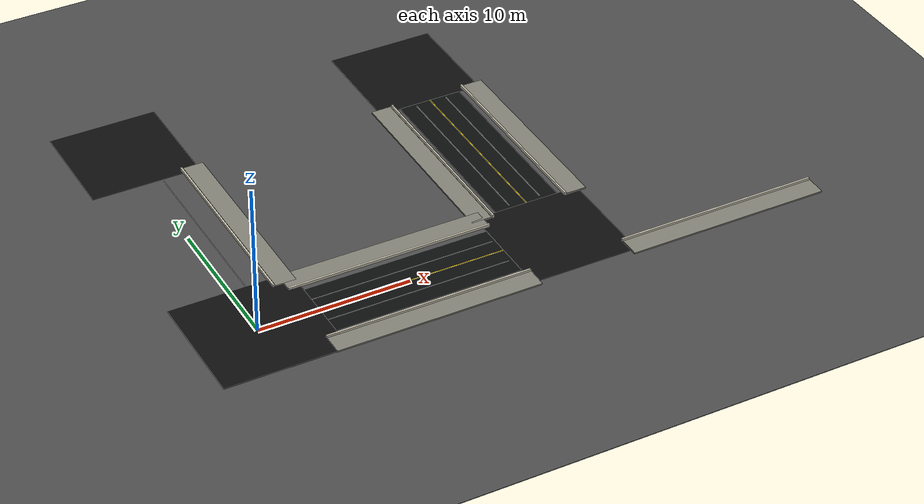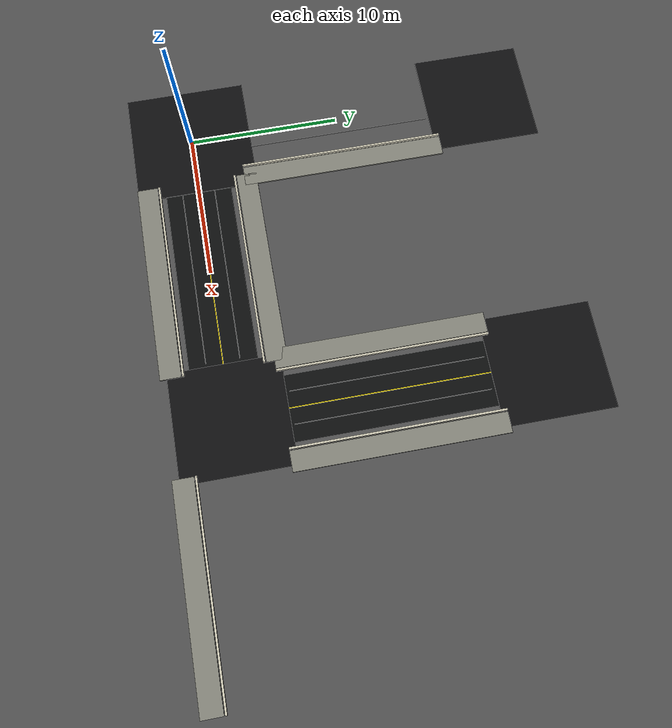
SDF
<sdf version="1.9">
 <world name="smart_city_world">
  <model name="ground">
   <static>true</static>
   <link name="link">
    <collision name="collision"><geometry><box><size>145 145 0.05</size></box></geometry></collision>
    <visual name="visual">
     <geometry><box><size>145 145 0.05</size></box></geometry>
     <material><ambient>0.30 0.30 0.30 1</ambient><diffuse>0.30 0.30 0.30 1</diffuse></material>
    </visual>
   </link>
  </model>
  <model name="road_e11">
   <static>true</static>
   <pose>10.000 0.000 0.018 0 0 0.000000</pose>
   <link name="link">
    <collision name="collision"><geometry><box><size>13.600 4.350 0.030</size></box></geometry></collision>
    <visual name="visual">
     <geometry><box><size>13.600 4.350 0.030</size></box></geometry>
     <material><ambient>0.045 0.047 0.05 1</ambient><diffuse>0.045 0.047 0.05 1</diffuse></material>
    </visual>
   </link>
  </model>
  <model name="center_line_e11">
   <static>true</static>
   <pose>10.000 0.000 0.052 0 0 0.000000</pose>
   <link name="link">
    <visual name="visual">
     <geometry><box><size>12.800 0.070 0.010</size></box></geometry>
     <material><ambient>1 0.86 0.05 1</ambient><diffuse>1 0.86 0.05 1</diffuse></material>
    </visual>
   </link>
  </model>
  <model name="sidewalk_e11_L">
   <static>true</static>
   <pose>10.000 3.350 0.075 0 0 0.000000</pose>
   <link name="link">
    <visual name="visual">
     <geometry><box><size>13.600 1.350 0.100</size></box></geometry>
     <material><ambient>0.5 0.5 0.46 1</ambient><diffuse>0.5 0.5 0.46 1</diffuse></material>
    </visual>
   </link>
  </model>
  <model name="curb_e11_L">
   <static>true</static>
   <pose>10.000 2.550 0.130 0 0 0.000000</pose>
   <link name="link">
    <visual name="visual">
     <geometry><box><size>13.600 0.120 0.180</size></box></geometry>
     <material><ambient>0.8 0.78 0.7 1</ambient><diffuse>0.8 0.78 0.7 1</diffuse></material>
    </visual>
   </link>
  </model>
  <model name="edge_line_e11_L">
   <static>true</static>
   <pose>10.000 1.080 0.054 0 0 0.000000</pose>
   <link name="link">
    <visual name="visual">
     <geometry><box><size>12.400 0.035 0.010</size></box></geometry>
     <material><ambient>0.85 0.85 0.85 1</ambient><diffuse>0.85 0.85 0.85 1</diffuse></material>
    </visual>
   </link>
  </model>
  <model name="sidewalk_e11_R">
   <static>true</static>
   <pose>10.000 -3.350 0.075 0 0 0.000000</pose>
   <link name="link">
    <visual name="visual">
     <geometry><box><size>13.600 1.350 0.100</size></box></geometry>
     <material><ambient>0.5 0.5 0.46 1</ambient><diffuse>0.5 0.5 0.46 1</diffuse></material>
    </visual>
   </link>
  </model>
  <model name="curb_e11_R">
   <static>true</static>
   <pose>10.000 -2.550 0.130 0 0 0.000000</pose>
   <link name="link">
    <visual name="visual">
     <geometry><box><size>13.600 0.120 0.180</size></box></geometry>
     <material><ambient>0.8 0.78 0.7 1</ambient><diffuse>0.8 0.78 0.7 1</diffuse></material>
    </visual>
   </link>
  </model>
  <model name="edge_line_e11_R">
   <static>true</static>
   <pose>10.000 -1.080 0.054 0 0 0.000000</pose>
   <link name="link">
    <visual name="visual">
     <geometry><box><size>12.400 0.035 0.010</size></box></geometry>
     <material><ambient>0.85 0.85 0.85 1</ambient><diffuse>0.85 0.85 0.85 1</diffuse></material>
    </visual>
   </link>
  </model>
  <model name="sidewalk_e12_R">
   <static>true</static>
   <pose>30.000 -3.350 0.075 0 0 0.000000</pose>
   <link name="link">
    <visual name="visual">
     <geometry><box><size>13.600 1.350 0.100</size></box></geometry>
     <material><ambient>0.5 0.5 0.46 1</ambient><diffuse>0.5 0.5 0.46 1</diffuse></material>
    </visual>
   </link>
  </model>
  <model name="curb_e12_R">
   <static>true</static>
   <pose>30.000 -2.550 0.130 0 0 0.000000</pose>
   <link name="link">
    <visual name="visual">
     <geometry><box><size>13.600 0.120 0.180</size></box></geometry>
     <material><ambient>0.8 0.78 0.7 1</ambient><diffuse>0.8 0.78 0.7 1</diffuse></material>
    </visual>
   </link>
  </model>
  <model name="sidewalk_e30_L">
   <static>true</static>
   <pose>3.350 10.000 0.075 0 0 -1.570796</pose>
   <link name="link">
    <visual name="visual">
     <geometry><box><size>13.600 1.350 0.100</size></box></geometry>
     <material><ambient>0.5 0.5 0.46 1</ambient><diffuse>0.5 0.5 0.46 1</diffuse></material>
    </visual>
   </link>
  </model>
  <model name="curb_e30_L">
   <static>true</static>
   <pose>2.550 10.000 0.130 0 0 -1.570796</pose>
   <link name="link">
    <visual name="visual">
     <geometry><box><size>13.600 0.120 0.180</size></box></geometry>
     <material><ambient>0.8 0.78 0.7 1</ambient><diffuse>0.8 0.78 0.7 1</diffuse></material>
    </visual>
   </link>
  </model>
  <model name="edge_line_e30_L">
   <static>true</static>
   <pose>1.080 10.000 0.054 0 0 -1.570796</pose>
   <link name="link">
    <visual name="visual">
     <geometry><box><size>12.400 0.035 0.010</size></box></geometry>
     <material><ambient>0.85 0.85 0.85 1</ambient><diffuse>0.85 0.85 0.85 1</diffuse></material>
    </visual>
   </link>
  </model>
  <model name="road_e34">
   <static>true</static>
   <pose>20.000 10.000 0.018 0 0 -1.570796</pose>
   <link name="link">
    <collision name="collision"><geometry><box><size>13.600 4.350 0.030</size></box></geometry></collision>
    <visual name="visual">
     <geometry><box><size>13.600 4.350 0.030</size></box></geometry>
     <material><ambient>0.045 0.047 0.05 1</ambient><diffuse>0.045 0.047 0.05 1</diffuse></material>
    </visual>
   </link>
  </model>
  <model name="center_line_e34">
   <static>true</static>
   <pose>20.000 10.000 0.052 0 0 -1.570796</pose>
   <link name="link">
    <visual name="visual">
     <geometry><box><size>12.800 0.070 0.010</size></box></geometry>
     <material><ambient>1 0.86 0.05 1</ambient><diffuse>1 0.86 0.05 1</diffuse></material>
    </visual>
   </link>
  </model>
  <model name="sidewalk_e34_L">
   <static>true</static>
   <pose>23.350 10.000 0.075 0 0 -1.570796</pose>
   <link name="link">
    <visual name="visual">
     <geometry><box><size>13.600 1.350 0.100</size></box></geometry>
     <material><ambient>0.5 0.5 0.46 1</ambient><diffuse>0.5 0.5 0.46 1</diffuse></material>
    </visual>
   </link>
  </model>
  <model name="curb_e34_L">
   <static>true</static>
   <pose>22.550 10.000 0.130 0 0 -1.570796</pose>
   <link name="link">
    <visual name="visual">
     <geometry><box><size>13.600 0.120 0.180</size></box></geometry>
     <material><ambient>0.8 0.78 0.7 1</ambient><diffuse>0.8 0.78 0.7 1</diffuse></material>
    </visual>
   </link>
  </model>
  <model name="edge_line_e34_L">
   <static>true</static>
   <pose>21.080 10.000 0.054 0 0 -1.570796</pose>
   <link name="link">
    <visual name="visual">
     <geometry><box><size>12.400 0.035 0.010</size></box></geometry>
     <material><ambient>0.85 0.85 0.85 1</ambient><diffuse>0.85 0.85 0.85 1</diffuse></material>
    </visual>
   </link>
  </model>
  <model name="sidewalk_e34_R">
   <static>true</static>
   <pose>16.650 10.000 0.075 0 0 -1.570796</pose>
   <link name="link">
    <visual name="visual">
     <geometry><box><size>13.600 1.350 0.100</size></box></geometry>
     <material><ambient>0.5 0.5 0.46 1</ambient><diffuse>0.5 0.5 0.46 1</diffuse></material>
    </visual>
   </link>
  </model>
  <model name="curb_e34_R">
   <static>true</static>
   <pose>17.450 10.000 0.130 0 0 -1.570796</pose>
   <link name="link">
    <visual name="visual">
     <geometry><box><size>13.600 0.120 0.180</size></box></geometry>
     <material><ambient>0.8 0.78 0.7 1</ambient><diffuse>0.8 0.78 0.7 1</diffuse></material>
    </visual>
   </link>
  </model>
  <model name="edge_line_e34_R">
   <static>true</static>
   <pose>18.920 10.000 0.054 0 0 -1.570796</pose>
   <link name="link">
    <visual name="visual">
     <geometry><box><size>12.400 0.035 0.010</size></box></geometry>
     <material><ambient>0.85 0.85 0.85 1</ambient><diffuse>0.85 0.85 0.85 1</diffuse></material>
    </visual>
   </link>
  </model>
  <model name="intersection_plate_n9">
   <static>true</static>
   <pose>20.000 20.000 0.025 0 0 0.000000</pose>
   <link name="link">
    <collision name="collision"><geometry><box><size>7.200 7.200 0.035</size></box></geometry></collision>
    <visual name="visual">
     <geometry><box><size>7.200 7.200 0.035</size></box></geometry>
     <material><ambient>0.055 0.055 0.058 1</ambient><diffuse>0.055 0.055 0.058 1</diffuse></material>
    </visual>
   </link>
  </model>
  <model name="intersection_plate_n13">
   <static>true</static>
   <pose>0.000 0.000 0.025 0 0 0.000000</pose>
   <link name="link">
    <collision name="collision"><geometry><box><size>7.200 7.200 0.035</size></box></geometry></collision>
    <visual name="visual">
     <geometry><box><size>7.200 7.200 0.035</size></box></geometry>
     <material><ambient>0.055 0.055 0.058 1</ambient><diffuse>0.055 0.055 0.058 1</diffuse></material>
    </visual>
   </link>
  </model>
  <model name="intersection_plate_n14">
   <static>true</static>
   <pose>20.000 0.000 0.025 0 0 0.000000</pose>
   <link name="link">
    <collision name="collision"><geometry><box><size>7.200 7.200 0.035</size></box></geometry></collision>
    <visual name="visual">
     <geometry><box><size>7.200 7.200 0.035</size></box></geometry>
     <material><ambient>0.055 0.055 0.058 1</ambient><diffuse>0.055 0.055 0.058 1</diffuse></material>
    </visual>
   </link>
  </model>
  <model name="central_square">
   <static>true</static>
   <pose>0.000 0.000 0.070 0 0 0.000000</pose>
   <link name="link">
    <visual name="visual">
     <geometry><box><size>8.000 8.000 0.050</size></box></geometry>
     <material><ambient>0.055 0.055 0.058 1</ambient><diffuse>0.055 0.055 0.058 1</diffuse></material>
    </visual>
   </link>
  </model>
  <model name="intersection_plate_n8">
   <static>true</static>
   <pose>0.000 20.000 0.025 0 0 0.000000</pose>
   <link name="link">
    <collision name="collision"><geometry><box><size>7.200 7.200 0.035</size></box></geometry></collision>
    <visual name="visual">
     <geometry><box><size>7.200 7.200 0.035</size></box></geometry>
     <material><ambient>0.055 0.055 0.058 1</ambient><diffuse>0.055 0.055 0.058 1</diffuse></material>
    </visual>
   </link>
  </model>
 </world>
</sdf>
